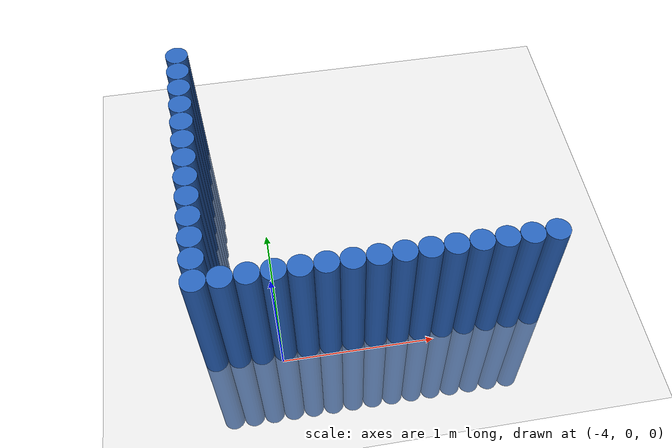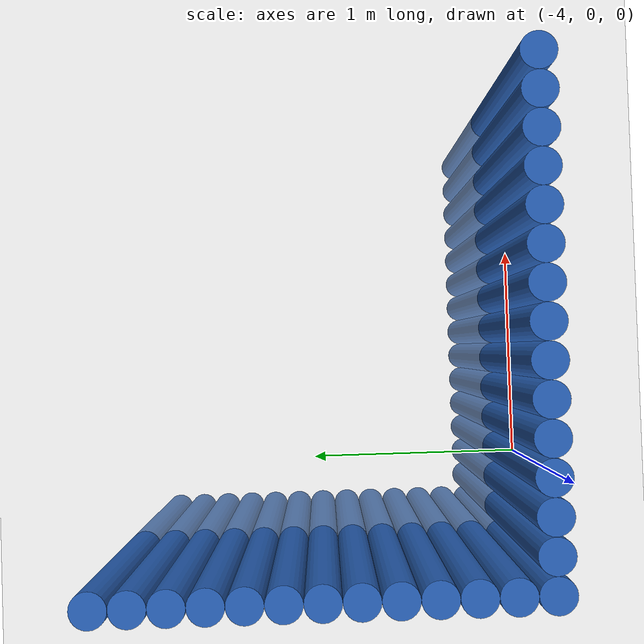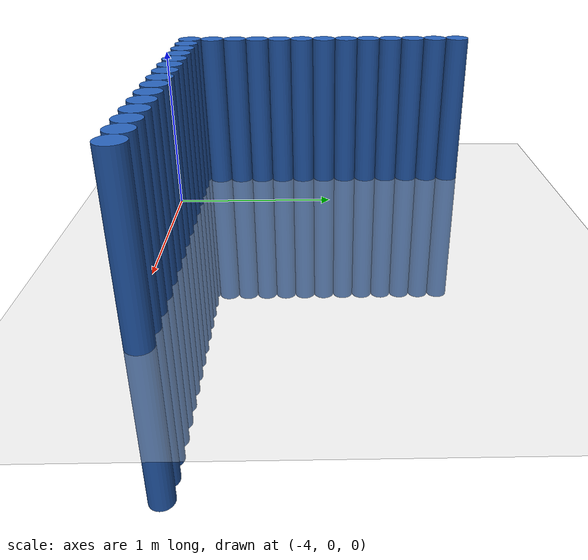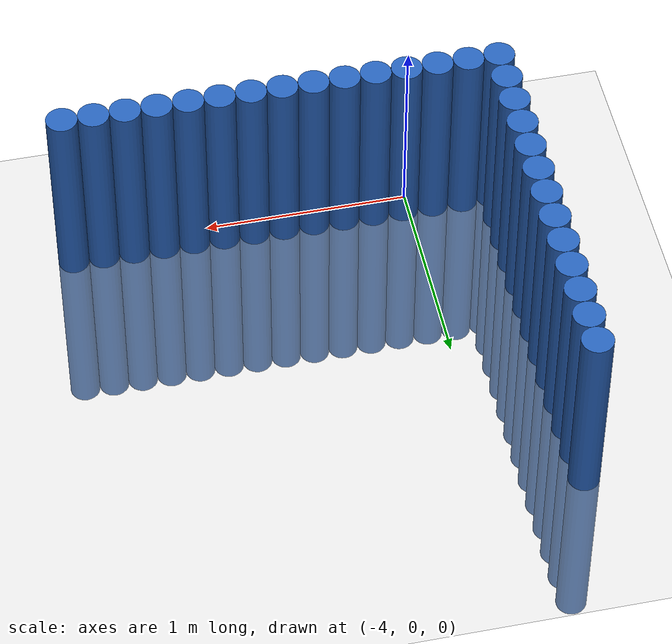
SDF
<sdf version="1.6">
 <world name="default">
  <model name="ground_plane">
   <static>1</static>
   <link name="link">
    <collision name="collision">
     <geometry><plane><normal>0 0 1</normal><size>100 100</size></plane></geometry>
     <surface><friction><ode><mu>100</mu><mu2>50</mu2></ode></friction></surface>
    </collision>
    <visual name="visual">
     <cast_shadows>0</cast_shadows>
     <geometry><plane><normal>0 0 1</normal><size>100 100</size></plane></geometry>
     <material>
      <script><uri>file://media/materials/scripts/gazebo.material</uri><name>Gazebo/Grey</name></script>
     </material>
    </visual>
   </link>
  </model>
  <model name="unit_cylinder_15">
   <static>1</static>
   <pose>-2.325000 0.075000 0.000000 0.000000 0.000000 0.000000</pose>
   <link name="link">
    <inertial>
     <mass>1</mass>
     <inertia><ixx>0.145833</ixx><ixy>0</ixy><ixz>0</ixz><iyy>0.145833</iyy><iyz>0</iyz><izz>0.125</izz></inertia>
    </inertial>
    <collision name="collision">
     <geometry><cylinder><radius>0.075000</radius><length>2</length></cylinder></geometry>
    </collision>
    <visual name="visual">
     <geometry><cylinder><radius>0.075000</radius><length>2</length></cylinder></geometry>
     <material>
      <ambient>0.152000 0.379000 0.720000 1</ambient>
      <diffuse>0.152000 0.379000 0.720000 1</diffuse>
     </material>
     <material>
      <script><name>Gazebo/Grey</name><uri>file://media/materials/scripts/gazebo.material</uri></script>
     </material>
    </visual>
   </link>
  </model>
  <model name="unit_cylinder_16">
   <static>1</static>
   <pose>-2.475000 0.075000 0.000000 0.000000 0.000000 0.000000</pose>
   <link name="link">
    <inertial>
     <mass>1</mass>
     <inertia><ixx>0.145833</ixx><ixy>0</ixy><ixz>0</ixz><iyy>0.145833</iyy><iyz>0</iyz><izz>0.125</izz></inertia>
    </inertial>
    <collision name="collision">
     <geometry><cylinder><radius>0.075000</radius><length>2</length></cylinder></geometry>
    </collision>
    <visual name="visual">
     <geometry><cylinder><radius>0.075000</radius><length>2</length></cylinder></geometry>
     <material>
      <ambient>0.152000 0.379000 0.720000 1</ambient>
      <diffuse>0.152000 0.379000 0.720000 1</diffuse>
     </material>
     <material>
      <script><name>Gazebo/Grey</name><uri>file://media/materials/scripts/gazebo.material</uri></script>
     </material>
    </visual>
   </link>
  </model>
  <model name="unit_cylinder_17">
   <static>1</static>
   <pose>-2.625000 0.075000 0.000000 0.000000 0.000000 0.000000</pose>
   <link name="link">
    <inertial>
     <mass>1</mass>
     <inertia><ixx>0.145833</ixx><ixy>0</ixy><ixz>0</ixz><iyy>0.145833</iyy><iyz>0</iyz><izz>0.125</izz></inertia>
    </inertial>
    <collision name="collision">
     <geometry><cylinder><radius>0.075000</radius><length>2</length></cylinder></geometry>
    </collision>
    <visual name="visual">
     <geometry><cylinder><radius>0.075000</radius><length>2</length></cylinder></geometry>
     <material>
      <ambient>0.152000 0.379000 0.720000 1</ambient>
      <diffuse>0.152000 0.379000 0.720000 1</diffuse>
     </material>
     <material>
      <script><name>Gazebo/Grey</name><uri>file://media/materials/scripts/gazebo.material</uri></script>
     </material>
    </visual>
   </link>
  </model>
  <model name="unit_cylinder_18">
   <static>1</static>
   <pose>-2.775000 0.075000 0.000000 0.000000 0.000000 0.000000</pose>
   <link name="link">
    <inertial>
     <mass>1</mass>
     <inertia><ixx>0.145833</ixx><ixy>0</ixy><ixz>0</ixz><iyy>0.145833</iyy><iyz>0</iyz><izz>0.125</izz></inertia>
    </inertial>
    <collision name="collision">
     <geometry><cylinder><radius>0.075000</radius><length>2</length></cylinder></geometry>
    </collision>
    <visual name="visual">
     <geometry><cylinder><radius>0.075000</radius><length>2</length></cylinder></geometry>
     <material>
      <ambient>0.152000 0.379000 0.720000 1</ambient>
      <diffuse>0.152000 0.379000 0.720000 1</diffuse>
     </material>
     <material>
      <script><name>Gazebo/Grey</name><uri>file://media/materials/scripts/gazebo.material</uri></script>
     </material>
    </visual>
   </link>
  </model>
  <model name="unit_cylinder_19">
   <static>1</static>
   <pose>-2.925000 0.075000 0.000000 0.000000 0.000000 0.000000</pose>
   <link name="link">
    <inertial>
     <mass>1</mass>
     <inertia><ixx>0.145833</ixx><ixy>0</ixy><ixz>0</ixz><iyy>0.145833</iyy><iyz>0</iyz><izz>0.125</izz></inertia>
    </inertial>
    <collision name="collision">
     <geometry><cylinder><radius>0.075000</radius><length>2</length></cylinder></geometry>
    </collision>
    <visual name="visual">
     <geometry><cylinder><radius>0.075000</radius><length>2</length></cylinder></geometry>
     <material>
      <ambient>0.152000 0.379000 0.720000 1</ambient>
      <diffuse>0.152000 0.379000 0.720000 1</diffuse>
     </material>
     <material>
      <script><name>Gazebo/Grey</name><uri>file://media/materials/scripts/gazebo.material</uri></script>
     </material>
    </visual>
   </link>
  </model>
  <model name="unit_cylinder_20">
   <static>1</static>
   <pose>-3.075000 0.075000 0.000000 0.000000 0.000000 0.000000</pose>
   <link name="link">
    <inertial>
     <mass>1</mass>
     <inertia><ixx>0.145833</ixx><ixy>0</ixy><ixz>0</ixz><iyy>0.145833</iyy><iyz>0</iyz><izz>0.125</izz></inertia>
    </inertial>
    <collision name="collision">
     <geometry><cylinder><radius>0.075000</radius><length>2</length></cylinder></geometry>
    </collision>
    <visual name="visual">
     <geometry><cylinder><radius>0.075000</radius><length>2</length></cylinder></geometry>
     <material>
      <ambient>0.152000 0.379000 0.720000 1</ambient>
      <diffuse>0.152000 0.379000 0.720000 1</diffuse>
     </material>
     <material>
      <script><name>Gazebo/Grey</name><uri>file://media/materials/scripts/gazebo.material</uri></script>
     </material>
    </visual>
   </link>
  </model>
  <model name="unit_cylinder_21">
   <static>1</static>
   <pose>-3.225000 0.075000 0.000000 0.000000 0.000000 0.000000</pose>
   <link name="link">
    <inertial>
     <mass>1</mass>
     <inertia><ixx>0.145833</ixx><ixy>0</ixy><ixz>0</ixz><iyy>0.145833</iyy><iyz>0</iyz><izz>0.125</izz></inertia>
    </inertial>
    <collision name="collision">
     <geometry><cylinder><radius>0.075000</radius><length>2</length></cylinder></geometry>
    </collision>
    <visual name="visual">
     <geometry><cylinder><radius>0.075000</radius><length>2</length></cylinder></geometry>
     <material>
      <ambient>0.152000 0.379000 0.720000 1</ambient>
      <diffuse>0.152000 0.379000 0.720000 1</diffuse>
     </material>
     <material>
      <script><name>Gazebo/Grey</name><uri>file://media/materials/scripts/gazebo.material</uri></script>
     </material>
    </visual>
   </link>
  </model>
  <model name="unit_cylinder_22">
   <static>1</static>
   <pose>-3.375000 0.075000 0.000000 0.000000 0.000000 0.000000</pose>
   <link name="link">
    <inertial>
     <mass>1</mass>
     <inertia><ixx>0.145833</ixx><ixy>0</ixy><ixz>0</ixz><iyy>0.145833</iyy><iyz>0</iyz><izz>0.125</izz></inertia>
    </inertial>
    <collision name="collision">
     <geometry><cylinder><radius>0.075000</radius><length>2</length></cylinder></geometry>
    </collision>
    <visual name="visual">
     <geometry><cylinder><radius>0.075000</radius><length>2</length></cylinder></geometry>
     <material>
      <ambient>0.152000 0.379000 0.720000 1</ambient>
      <diffuse>0.152000 0.379000 0.720000 1</diffuse>
     </material>
     <material>
      <script><name>Gazebo/Grey</name><uri>file://media/materials/scripts/gazebo.material</uri></script>
     </material>
    </visual>
   </link>
  </model>
  <model name="unit_cylinder_23">
   <static>1</static>
   <pose>-3.525000 0.075000 0.000000 0.000000 0.000000 0.000000</pose>
   <link name="link">
    <inertial>
     <mass>1</mass>
     <inertia><ixx>0.145833</ixx><ixy>0</ixy><ixz>0</ixz><iyy>0.145833</iyy><iyz>0</iyz><izz>0.125</izz></inertia>
    </inertial>
    <collision name="collision">
     <geometry><cylinder><radius>0.075000</radius><length>2</length></cylinder></geometry>
    </collision>
    <visual name="visual">
     <geometry><cylinder><radius>0.075000</radius><length>2</length></cylinder></geometry>
     <material>
      <ambient>0.152000 0.379000 0.720000 1</ambient>
      <diffuse>0.152000 0.379000 0.720000 1</diffuse>
     </material>
     <material>
      <script><name>Gazebo/Grey</name><uri>file://media/materials/scripts/gazebo.material</uri></script>
     </material>
    </visual>
   </link>
  </model>
  <model name="unit_cylinder_24">
   <static>1</static>
   <pose>-3.675000 0.075000 0.000000 0.000000 0.000000 0.000000</pose>
   <link name="link">
    <inertial>
     <mass>1</mass>
     <inertia><ixx>0.145833</ixx><ixy>0</ixy><ixz>0</ixz><iyy>0.145833</iyy><iyz>0</iyz><izz>0.125</izz></inertia>
    </inertial>
    <collision name="collision">
     <geometry><cylinder><radius>0.075000</radius><length>2</length></cylinder></geometry>
    </collision>
    <visual name="visual">
     <geometry><cylinder><radius>0.075000</radius><length>2</length></cylinder></geometry>
     <material>
      <ambient>0.152000 0.379000 0.720000 1</ambient>
      <diffuse>0.152000 0.379000 0.720000 1</diffuse>
     </material>
     <material>
      <script><name>Gazebo/Grey</name><uri>file://media/materials/scripts/gazebo.material</uri></script>
     </material>
    </visual>
   </link>
  </model>
  <model name="unit_cylinder_25">
   <static>1</static>
   <pose>-3.825000 0.075000 0.000000 0.000000 0.000000 0.000000</pose>
   <link name="link">
    <inertial>
     <mass>1</mass>
     <inertia><ixx>0.145833</ixx><ixy>0</ixy><ixz>0</ixz><iyy>0.145833</iyy><iyz>0</iyz><izz>0.125</izz></inertia>
    </inertial>
    <collision name="collision">
     <geometry><cylinder><radius>0.075000</radius><length>2</length></cylinder></geometry>
    </collision>
    <visual name="visual">
     <geometry><cylinder><radius>0.075000</radius><length>2</length></cylinder></geometry>
     <material>
      <ambient>0.152000 0.379000 0.720000 1</ambient>
      <diffuse>0.152000 0.379000 0.720000 1</diffuse>
     </material>
     <material>
      <script><name>Gazebo/Grey</name><uri>file://media/materials/scripts/gazebo.material</uri></script>
     </material>
    </visual>
   </link>
  </model>
  <model name="unit_cylinder_26">
   <static>1</static>
   <pose>-3.975000 0.075000 0.000000 0.000000 0.000000 0.000000</pose>
   <link name="link">
    <inertial>
     <mass>1</mass>
     <inertia><ixx>0.145833</ixx><ixy>0</ixy><ixz>0</ixz><iyy>0.145833</iyy><iyz>0</iyz><izz>0.125</izz></inertia>
    </inertial>
    <collision name="collision">
     <geometry><cylinder><radius>0.075000</radius><length>2</length></cylinder></geometry>
    </collision>
    <visual name="visual">
     <geometry><cylinder><radius>0.075000</radius><length>2</length></cylinder></geometry>
     <material>
      <ambient>0.152000 0.379000 0.720000 1</ambient>
      <diffuse>0.152000 0.379000 0.720000 1</diffuse>
     </material>
     <material>
      <script><name>Gazebo/Grey</name><uri>file://media/materials/scripts/gazebo.material</uri></script>
     </material>
    </visual>
   </link>
  </model>
  <model name="unit_cylinder_27">
   <static>1</static>
   <pose>-4.125000 0.075000 0.000000 0.000000 0.000000 0.000000</pose>
   <link name="link">
    <inertial>
     <mass>1</mass>
     <inertia><ixx>0.145833</ixx><ixy>0</ixy><ixz>0</ixz><iyy>0.145833</iyy><iyz>0</iyz><izz>0.125</izz></inertia>
    </inertial>
    <collision name="collision">
     <geometry><cylinder><radius>0.075000</radius><length>2</length></cylinder></geometry>
    </collision>
    <visual name="visual">
     <geometry><cylinder><radius>0.075000</radius><length>2</length></cylinder></geometry>
     <material>
      <ambient>0.152000 0.379000 0.720000 1</ambient>
      <diffuse>0.152000 0.379000 0.720000 1</diffuse>
     </material>
     <material>
      <script><name>Gazebo/Grey</name><uri>file://media/materials/scripts/gazebo.material</uri></script>
     </material>
    </visual>
   </link>
  </model>
  <model name="unit_cylinder_28">
   <static>1</static>
   <pose>-4.275000 0.075000 0.000000 0.000000 0.000000 0.000000</pose>
   <link name="link">
    <inertial>
     <mass>1</mass>
     <inertia><ixx>0.145833</ixx><ixy>0</ixy><ixz>0</ixz><iyy>0.145833</iyy><iyz>0</iyz><izz>0.125</izz></inertia>
    </inertial>
    <collision name="collision">
     <geometry><cylinder><radius>0.075000</radius><length>2</length></cylinder></geometry>
    </collision>
    <visual name="visual">
     <geometry><cylinder><radius>0.075000</radius><length>2</length></cylinder></geometry>
     <material>
      <ambient>0.152000 0.379000 0.720000 1</ambient>
      <diffuse>0.152000 0.379000 0.720000 1</diffuse>
     </material>
     <material>
      <script><name>Gazebo/Grey</name><uri>file://media/materials/scripts/gazebo.material</uri></script>
     </material>
    </visual>
   </link>
  </model>
  <model name="unit_cylinder_29">
   <static>1</static>
   <pose>-4.425000 0.075000 0.000000 0.000000 0.000000 0.000000</pose>
   <link name="link">
    <inertial>
     <mass>1</mass>
     <inertia><ixx>0.145833</ixx><ixy>0</ixy><ixz>0</ixz><iyy>0.145833</iyy><iyz>0</iyz><izz>0.125</izz></inertia>
    </inertial>
    <collision name="collision">
     <geometry><cylinder><radius>0.075000</radius><length>2</length></cylinder></geometry>
    </collision>
    <visual name="visual">
     <geometry><cylinder><radius>0.075000</radius><length>2</length></cylinder></geometry>
     <material>
      <ambient>0.152000 0.379000 0.720000 1</ambient>
      <diffuse>0.152000 0.379000 0.720000 1</diffuse>
     </material>
     <material>
      <script><name>Gazebo/Grey</name><uri>file://media/materials/scripts/gazebo.material</uri></script>
     </material>
    </visual>
   </link>
  </model>
  <model name="unit_cylinder_31">
   <static>1</static>
   <pose>-4.425000 0.225000 0.000000 0.000000 0.000000 0.000000</pose>
   <link name="link">
    <inertial>
     <mass>1</mass>
     <inertia><ixx>0.145833</ixx><ixy>0</ixy><ixz>0</ixz><iyy>0.145833</iyy><iyz>0</iyz><izz>0.125</izz></inertia>
    </inertial>
    <collision name="collision">
     <geometry><cylinder><radius>0.075000</radius><length>2</length></cylinder></geometry>
    </collision>
    <visual name="visual">
     <geometry><cylinder><radius>0.075000</radius><length>2</length></cylinder></geometry>
     <material>
      <ambient>0.152000 0.379000 0.720000 1</ambient>
      <diffuse>0.152000 0.379000 0.720000 1</diffuse>
     </material>
     <material>
      <script><name>Gazebo/Grey</name><uri>file://media/materials/scripts/gazebo.material</uri></script>
     </material>
    </visual>
   </link>
  </model>
  <model name="unit_cylinder_33">
   <static>1</static>
   <pose>-4.425000 0.375000 0.000000 0.000000 0.000000 0.000000</pose>
   <link name="link">
    <inertial>
     <mass>1</mass>
     <inertia><ixx>0.145833</ixx><ixy>0</ixy><ixz>0</ixz><iyy>0.145833</iyy><iyz>0</iyz><izz>0.125</izz></inertia>
    </inertial>
    <collision name="collision">
     <geometry><cylinder><radius>0.075000</radius><length>2</length></cylinder></geometry>
    </collision>
    <visual name="visual">
     <geometry><cylinder><radius>0.075000</radius><length>2</length></cylinder></geometry>
     <material>
      <ambient>0.152000 0.379000 0.720000 1</ambient>
      <diffuse>0.152000 0.379000 0.720000 1</diffuse>
     </material>
     <material>
      <script><name>Gazebo/Grey</name><uri>file://media/materials/scripts/gazebo.material</uri></script>
     </material>
    </visual>
   </link>
  </model>
  <model name="unit_cylinder_35">
   <static>1</static>
   <pose>-4.425000 0.525000 0.000000 0.000000 0.000000 0.000000</pose>
   <link name="link">
    <inertial>
     <mass>1</mass>
     <inertia><ixx>0.145833</ixx><ixy>0</ixy><ixz>0</ixz><iyy>0.145833</iyy><iyz>0</iyz><izz>0.125</izz></inertia>
    </inertial>
    <collision name="collision">
     <geometry><cylinder><radius>0.075000</radius><length>2</length></cylinder></geometry>
    </collision>
    <visual name="visual">
     <geometry><cylinder><radius>0.075000</radius><length>2</length></cylinder></geometry>
     <material>
      <ambient>0.152000 0.379000 0.720000 1</ambient>
      <diffuse>0.152000 0.379000 0.720000 1</diffuse>
     </material>
     <material>
      <script><name>Gazebo/Grey</name><uri>file://media/materials/scripts/gazebo.material</uri></script>
     </material>
    </visual>
   </link>
  </model>
  <model name="unit_cylinder_37">
   <static>1</static>
   <pose>-4.425000 0.675000 0.000000 0.000000 0.000000 0.000000</pose>
   <link name="link">
    <inertial>
     <mass>1</mass>
     <inertia><ixx>0.145833</ixx><ixy>0</ixy><ixz>0</ixz><iyy>0.145833</iyy><iyz>0</iyz><izz>0.125</izz></inertia>
    </inertial>
    <collision name="collision">
     <geometry><cylinder><radius>0.075000</radius><length>2</length></cylinder></geometry>
    </collision>
    <visual name="visual">
     <geometry><cylinder><radius>0.075000</radius><length>2</length></cylinder></geometry>
     <material>
      <ambient>0.152000 0.379000 0.720000 1</ambient>
      <diffuse>0.152000 0.379000 0.720000 1</diffuse>
     </material>
     <material>
      <script><name>Gazebo/Grey</name><uri>file://media/materials/scripts/gazebo.material</uri></script>
     </material>
    </visual>
   </link>
  </model>
  <model name="unit_cylinder_39">
   <static>1</static>
   <pose>-4.425000 0.825000 0.000000 0.000000 0.000000 0.000000</pose>
   <link name="link">
    <inertial>
     <mass>1</mass>
     <inertia><ixx>0.145833</ixx><ixy>0</ixy><ixz>0</ixz><iyy>0.145833</iyy><iyz>0</iyz><izz>0.125</izz></inertia>
    </inertial>
    <collision name="collision">
     <geometry><cylinder><radius>0.075000</radius><length>2</length></cylinder></geometry>
    </collision>
    <visual name="visual">
     <geometry><cylinder><radius>0.075000</radius><length>2</length></cylinder></geometry>
     <material>
      <ambient>0.152000 0.379000 0.720000 1</ambient>
      <diffuse>0.152000 0.379000 0.720000 1</diffuse>
     </material>
     <material>
      <script><name>Gazebo/Grey</name><uri>file://media/materials/scripts/gazebo.material</uri></script>
     </material>
    </visual>
   </link>
  </model>
  <model name="unit_cylinder_41">
   <static>1</static>
   <pose>-4.425000 0.975000 0.000000 0.000000 0.000000 0.000000</pose>
   <link name="link">
    <inertial>
     <mass>1</mass>
     <inertia><ixx>0.145833</ixx><ixy>0</ixy><ixz>0</ixz><iyy>0.145833</iyy><iyz>0</iyz><izz>0.125</izz></inertia>
    </inertial>
    <collision name="collision">
     <geometry><cylinder><radius>0.075000</radius><length>2</length></cylinder></geometry>
    </collision>
    <visual name="visual">
     <geometry><cylinder><radius>0.075000</radius><length>2</length></cylinder></geometry>
     <material>
      <ambient>0.152000 0.379000 0.720000 1</ambient>
      <diffuse>0.152000 0.379000 0.720000 1</diffuse>
     </material>
     <material>
      <script><name>Gazebo/Grey</name><uri>file://media/materials/scripts/gazebo.material</uri></script>
     </material>
    </visual>
   </link>
  </model>
  <model name="unit_cylinder_43">
   <static>1</static>
   <pose>-4.425000 1.125000 0.000000 0.000000 0.000000 0.000000</pose>
   <link name="link">
    <inertial>
     <mass>1</mass>
     <inertia><ixx>0.145833</ixx><ixy>0</ixy><ixz>0</ixz><iyy>0.145833</iyy><iyz>0</iyz><izz>0.125</izz></inertia>
    </inertial>
    <collision name="collision">
     <geometry><cylinder><radius>0.075000</radius><length>2</length></cylinder></geometry>
    </collision>
    <visual name="visual">
     <geometry><cylinder><radius>0.075000</radius><length>2</length></cylinder></geometry>
     <material>
      <ambient>0.152000 0.379000 0.720000 1</ambient>
      <diffuse>0.152000 0.379000 0.720000 1</diffuse>
     </material>
     <material>
      <script><name>Gazebo/Grey</name><uri>file://media/materials/scripts/gazebo.material</uri></script>
     </material>
    </visual>
   </link>
  </model>
  <model name="unit_cylinder_45">
   <static>1</static>
   <pose>-4.425000 1.275000 0.000000 0.000000 0.000000 0.000000</pose>
   <link name="link">
    <inertial>
     <mass>1</mass>
     <inertia><ixx>0.145833</ixx><ixy>0</ixy><ixz>0</ixz><iyy>0.145833</iyy><iyz>0</iyz><izz>0.125</izz></inertia>
    </inertial>
    <collision name="collision">
     <geometry><cylinder><radius>0.075000</radius><length>2</length></cylinder></geometry>
    </collision>
    <visual name="visual">
     <geometry><cylinder><radius>0.075000</radius><length>2</length></cylinder></geometry>
     <material>
      <ambient>0.152000 0.379000 0.720000 1</ambient>
      <diffuse>0.152000 0.379000 0.720000 1</diffuse>
     </material>
     <material>
      <script><name>Gazebo/Grey</name><uri>file://media/materials/scripts/gazebo.material</uri></script>
     </material>
    </visual>
   </link>
  </model>
  <model name="unit_cylinder_47">
   <static>1</static>
   <pose>-4.425000 1.425000 0.000000 0.000000 0.000000 0.000000</pose>
   <link name="link">
    <inertial>
     <mass>1</mass>
     <inertia><ixx>0.145833</ixx><ixy>0</ixy><ixz>0</ixz><iyy>0.145833</iyy><iyz>0</iyz><izz>0.125</izz></inertia>
    </inertial>
    <collision name="collision">
     <geometry><cylinder><radius>0.075000</radius><length>2</length></cylinder></geometry>
    </collision>
    <visual name="visual">
     <geometry><cylinder><radius>0.075000</radius><length>2</length></cylinder></geometry>
     <material>
      <ambient>0.152000 0.379000 0.720000 1</ambient>
      <diffuse>0.152000 0.379000 0.720000 1</diffuse>
     </material>
     <material>
      <script><name>Gazebo/Grey</name><uri>file://media/materials/scripts/gazebo.material</uri></script>
     </material>
    </visual>
   </link>
  </model>
  <model name="unit_cylinder_49">
   <static>1</static>
   <pose>-4.425000 1.575000 0.000000 0.000000 0.000000 0.000000</pose>
   <link name="link">
    <inertial>
     <mass>1</mass>
     <inertia><ixx>0.145833</ixx><ixy>0</ixy><ixz>0</ixz><iyy>0.145833</iyy><iyz>0</iyz><izz>0.125</izz></inertia>
    </inertial>
    <collision name="collision">
     <geometry><cylinder><radius>0.075000</radius><length>2</length></cylinder></geometry>
    </collision>
    <visual name="visual">
     <geometry><cylinder><radius>0.075000</radius><length>2</length></cylinder></geometry>
     <material>
      <ambient>0.152000 0.379000 0.720000 1</ambient>
      <diffuse>0.152000 0.379000 0.720000 1</diffuse>
     </material>
     <material>
      <script><name>Gazebo/Grey</name><uri>file://media/materials/scripts/gazebo.material</uri></script>
     </material>
    </visual>
   </link>
  </model>
  <model name="unit_cylinder_51">
   <static>1</static>
   <pose>-4.425000 1.725000 0.000000 0.000000 0.000000 0.000000</pose>
   <link name="link">
    <inertial>
     <mass>1</mass>
     <inertia><ixx>0.145833</ixx><ixy>0</ixy><ixz>0</ixz><iyy>0.145833</iyy><iyz>0</iyz><izz>0.125</izz></inertia>
    </inertial>
    <collision name="collision">
     <geometry><cylinder><radius>0.075000</radius><length>2</length></cylinder></geometry>
    </collision>
    <visual name="visual">
     <geometry><cylinder><radius>0.075000</radius><length>2</length></cylinder></geometry>
     <material>
      <ambient>0.152000 0.379000 0.720000 1</ambient>
      <diffuse>0.152000 0.379000 0.720000 1</diffuse>
     </material>
     <material>
      <script><name>Gazebo/Grey</name><uri>file://media/materials/scripts/gazebo.material</uri></script>
     </material>
    </visual>
   </link>
  </model>
  <model name="unit_cylinder_53">
   <static>1</static>
   <pose>-4.425000 1.875000 0.000000 0.000000 0.000000 0.000000</pose>
   <link name="link">
    <inertial>
     <mass>1</mass>
     <inertia><ixx>0.145833</ixx><ixy>0</ixy><ixz>0</ixz><iyy>0.145833</iyy><iyz>0</iyz><izz>0.125</izz></inertia>
    </inertial>
    <collision name="collision">
     <geometry><cylinder><radius>0.075000</radius><length>2</length></cylinder></geometry>
    </collision>
    <visual name="visual">
     <geometry><cylinder><radius>0.075000</radius><length>2</length></cylinder></geometry>
     <material>
      <ambient>0.152000 0.379000 0.720000 1</ambient>
      <diffuse>0.152000 0.379000 0.720000 1</diffuse>
     </material>
     <material>
      <script><name>Gazebo/Grey</name><uri>file://media/materials/scripts/gazebo.material</uri></script>
     </material>
    </visual>
   </link>
  </model>
 </world>
</sdf>
